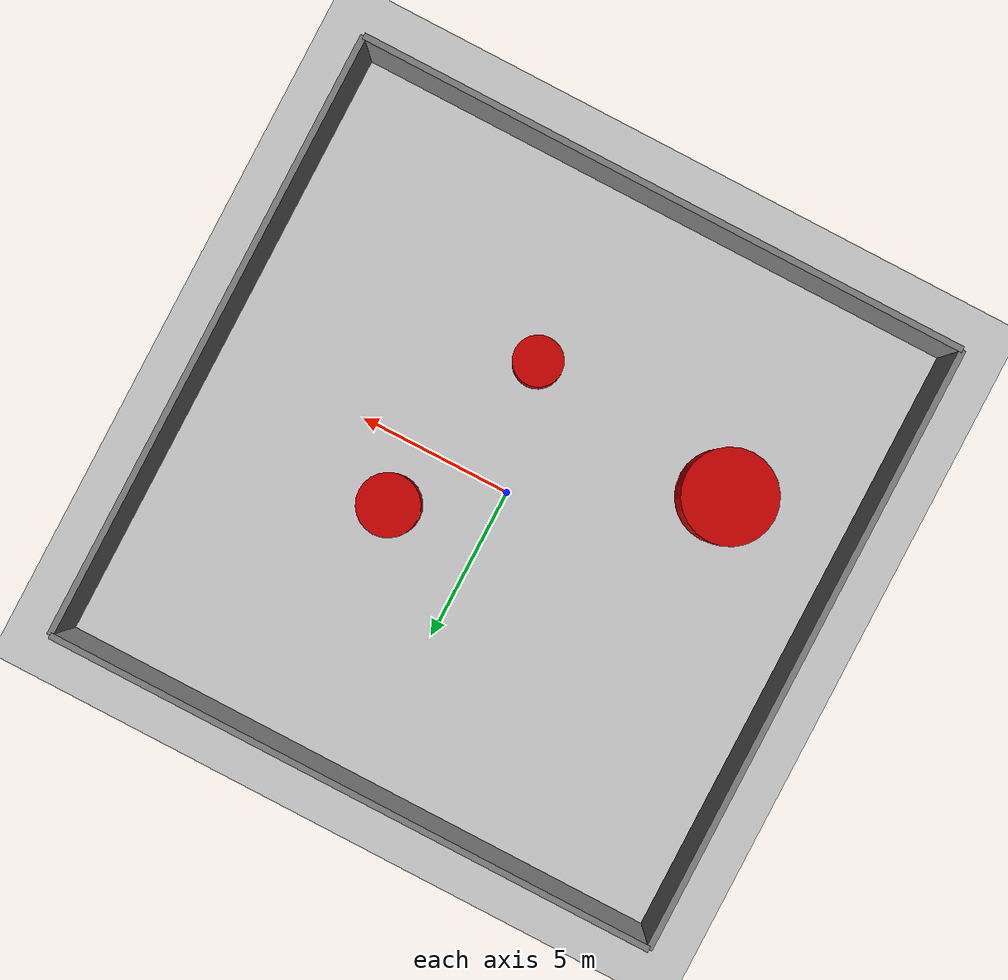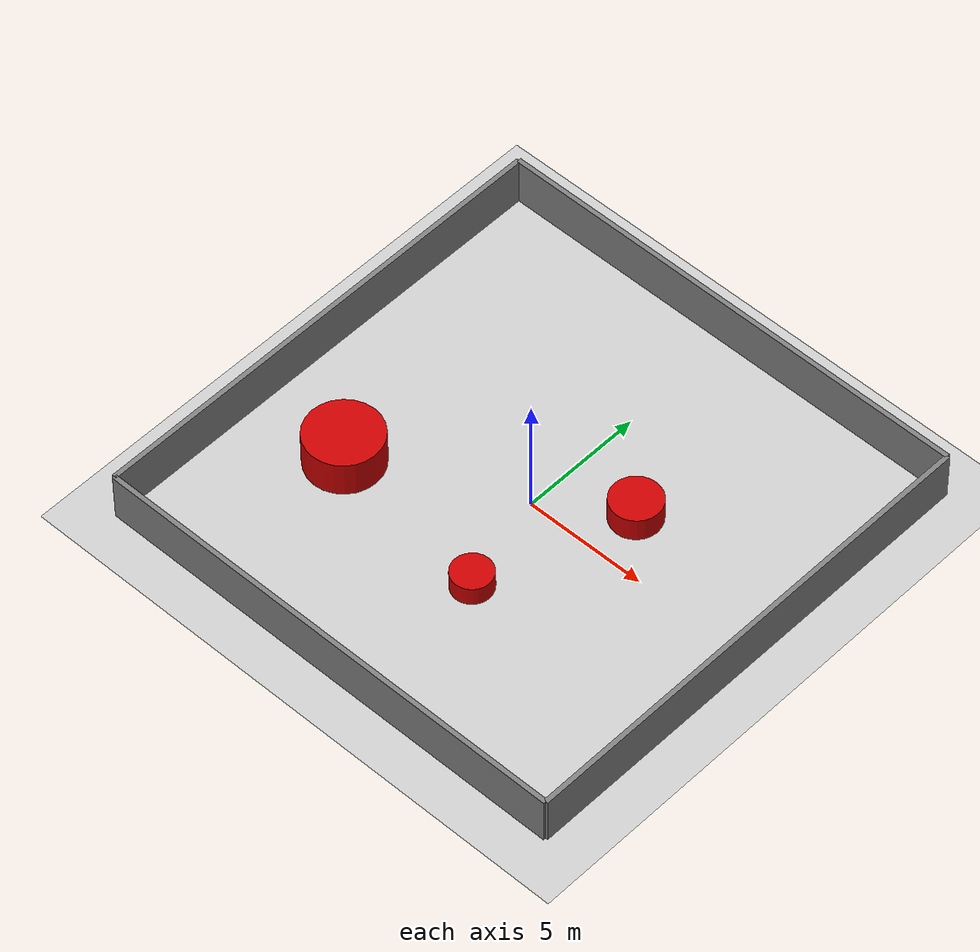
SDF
<?xml version="1.0" ?>
<sdf version="1.6">
  <world name="swarm_arena">
    <!-- A global light source -->
    <include>
      <uri>model://sun</uri>
    </include>

    <!-- A ground plane -->
    <include>
      <uri>model://ground_plane</uri>
    </include>

    <!-- Physics engine -->
    <physics type="ode">
      <max_step_size>0.001</max_step_size>
      <real_time_factor>1</real_time_factor>
      <real_time_update_rate>1000</real_time_update_rate>
      <gravity>0 0 -9.81</gravity>
    </physics>

    <!-- GUI -->
    <gui fullscreen='0'>
      <camera name='user_camera'>
        <pose>5 -5 2 0 0.785 0.785</pose>
        <view_controller>orbit</view_controller>
        <projection_type>perspective</projection_type>
      </camera>
    </gui>

    <!-- Static obstacles -->
    <model name="obstacle_1">
      <static>true</static>
      <pose>3 2 0.5 0 0 0</pose>
      <link name="link">
        <collision name="collision">
          <geometry>
            <cylinder>
              <radius>1.0</radius>
              <length>1.0</length>
            </cylinder>
          </geometry>
        </collision>
        <visual name="visual">
          <geometry>
            <cylinder>
              <radius>1.0</radius>
              <length>1.0</length>
            </cylinder>
          </geometry>
          <material>
            <ambient>0.8 0 0 1</ambient>
            <diffuse>0.8 0 0 1</diffuse>
          </material>
        </visual>
      </link>
    </model>

    <model name="obstacle_2">
      <static>true</static>
      <pose>-6 -3 0.75 0 0 0</pose>
      <link name="link">
        <collision name="collision">
          <geometry>
            <cylinder>
              <radius>1.5</radius>
              <length>1.5</length>
            </cylinder>
          </geometry>
        </collision>
        <visual name="visual">
          <geometry>
            <cylinder>
              <radius>1.5</radius>
              <length>1.5</length>
            </cylinder>
          </geometry>
          <material>
            <ambient>0.8 0 0 1</ambient>
            <diffuse>0.8 0 0 1</diffuse>
          </material>
        </visual>
      </link>
    </model>

    <model name="obstacle_3">
      <static>true</static>
      <pose>1 -4 0.4 0 0 0</pose>
      <link name="link">
        <collision name="collision">
          <geometry>
            <cylinder>
              <radius>0.8</radius>
              <length>0.8</length>
            </cylinder>
          </geometry>
        </collision>
        <visual name="visual">
          <geometry>
            <cylinder>
              <radius>0.8</radius>
              <length>0.8</length>
            </cylinder>
          </geometry>
          <material>
            <ambient>0.8 0 0 1</ambient>
            <diffuse>0.8 0 0 1</diffuse>
          </material>
        </visual>
      </link>
    </model>

    <!-- Arena walls -->
    <model name="wall_north">
      <static>true</static>
      <pose>0 10 1 0 0 0</pose>
      <link name="link">
        <collision name="collision">
          <geometry>
            <box>
              <size>20 0.2 2</size>
            </box>
          </geometry>
        </collision>
        <visual name="visual">
          <geometry>
            <box>
              <size>20 0.2 2</size>
            </box>
          </geometry>
          <material>
            <ambient>0.5 0.5 0.5 1</ambient>
            <diffuse>0.5 0.5 0.5 1</diffuse>
          </material>
        </visual>
      </link>
    </model>

    <model name="wall_south">
      <static>true</static>
      <pose>0 -10 1 0 0 0</pose>
      <link name="link">
        <collision name="collision">
          <geometry>
            <box>
              <size>20 0.2 2</size>
            </box>
          </geometry>
        </collision>
        <visual name="visual">
          <geometry>
            <box>
              <size>20 0.2 2</size>
            </box>
          </geometry>
          <material>
            <ambient>0.5 0.5 0.5 1</ambient>
            <diffuse>0.5 0.5 0.5 1</diffuse>
          </material>
        </visual>
      </link>
    </model>

    <model name="wall_east">
      <static>true</static>
      <pose>10 0 1 0 0 0</pose>
      <link name="link">
        <collision name="collision">
          <geometry>
            <box>
              <size>0.2 20 2</size>
            </box>
          </geometry>
        </collision>
        <visual name="visual">
          <geometry>
            <box>
              <size>0.2 20 2</size>
            </box>
          </geometry>
          <material>
            <ambient>0.5 0.5 0.5 1</ambient>
            <diffuse>0.5 0.5 0.5 1</diffuse>
          </material>
        </visual>
      </link>
    </model>

    <model name="wall_west">
      <static>true</static>
      <pose>-10 0 1 0 0 0</pose>
      <link name="link">
        <collision name="collision">
          <geometry>
            <box>
              <size>0.2 20 2</size>
            </box>
          </geometry>
        </collision>
        <visual name="visual">
          <geometry>
            <box>
              <size>0.2 20 2</size>
            </box>
          </geometry>
          <material>
            <ambient>0.5 0.5 0.5 1</ambient>
            <diffuse>0.5 0.5 0.5 1</diffuse>
          </material>
        </visual>
      </link>
    </model>

  </world>
</sdf>
